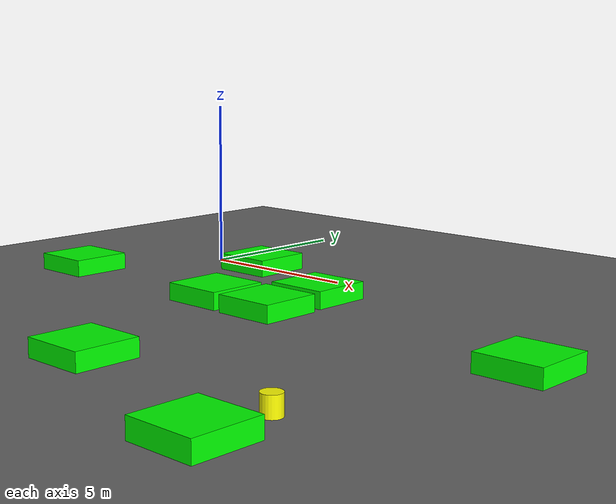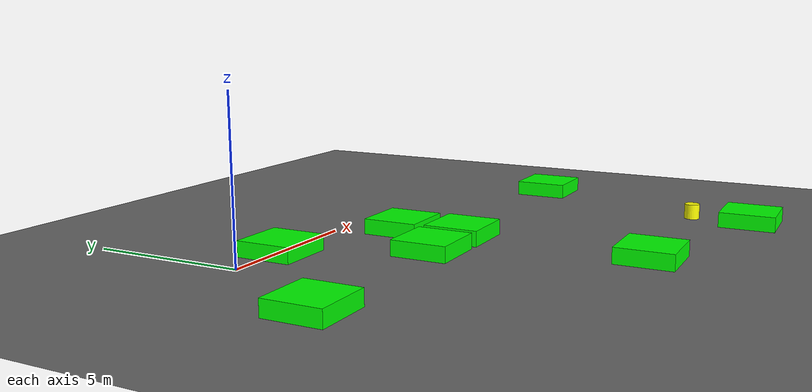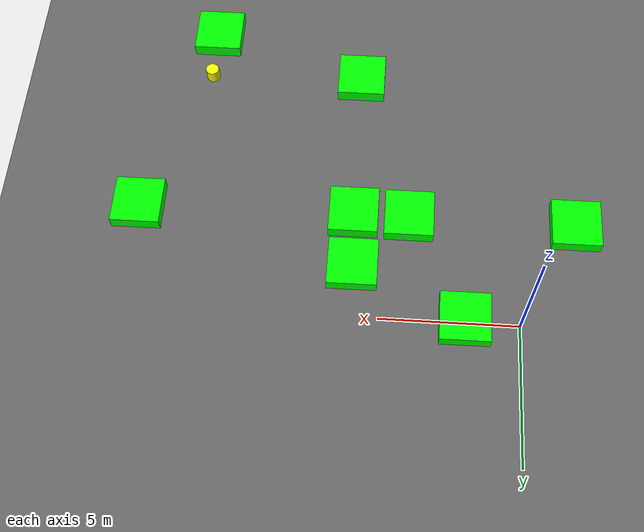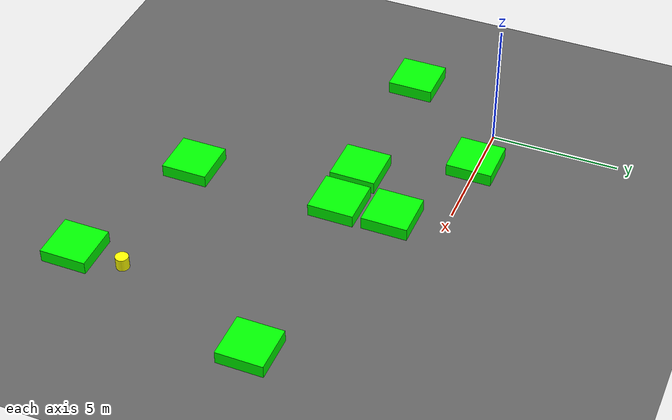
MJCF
<mujoco model="lvl4_standard_obs8_d3long_seed1032">
    <compiler angle="degree" coordinate="local" inertiafromgeom="true"/>
    <option integrator="RK4" timestep="0.01"/>

    <asset>
        <texture builtin="gradient" height="100" rgb1="0.6 0.8 1" rgb2="0 0 0" type="skybox" width="100"/>
        <texture name="floor_texture" type="2d" builtin="checker" width="100" height="100" rgb1="0 0 0" rgb2="0.8 0.8 0.8"/>
        <material name="MatPlane" reflectance="0.5" shininess="1" specular="1" texrepeat="10 10" texture="floor_texture"/>
    </asset>

    <!-- Excluding the contact between the agent and the goal, and the agent and the floor -->
    <contact>
        <exclude body1="agent" body2="goal"/>
        <exclude body1 = "agent" body2 = "floor"/>
    </contact>

    <extension>
        <plugin plugin = "mujoco.pid">
            <instance name = "pid1">
                <config key="kp" value="2"/>
                <config key="ki" value="0"/>
                <config key="kd" value="55"/>
            </instance>
        </plugin>
    </extension>

    <worldbody>
        <light cutoff="100" diffuse="1 1 1" dir="-0 0 -1.3" directional="true" exponent="1" pos="0 0 1.3" specular=".1 .1 .1"/>
        <body name="floor" pos="0 0 0">
            <geom name="floor_geom" type="plane" size="20 20 0.1" material="MatPlane"/>
        </body>

                <body name="goal" pos="0.0000 0.0000 0">
            <geom name="goal_geom" type="plane" size="0.5 0.5 1" pos="0 0 0" rgba="1 0 0 1"/>
        </body>

                <body name="agent" pos="12.0000 -10.0000 0.250">
            <joint name="j1" type="slide" axis ="1 0 0 "/>
            <joint name="j2" type="slide" axis ="0 1 0 "/>
            <geom name="agent_geom" type="cylinder" size="0.25 0.25 0.250" rgba="1 1 0 1"/>
        </body>

        <body name="obstacle1" pos="1.9498 -0.0970 0.250">  <geom name="obstacle1_geom" type="box" size="0.9000 0.9000 0.250" rgba="0 1 0 1"/></body>
        <body name="obstacle2" pos="5.9840 -1.9748 0.250">  <geom name="obstacle2_geom" type="box" size="0.9000 0.9000 0.250" rgba="0 1 0 1"/></body>
        <body name="obstacle3" pos="-2.0601 -3.9780 0.250">  <geom name="obstacle3_geom" type="box" size="0.9000 0.9000 0.250" rgba="0 1 0 1"/></body>
        <body name="obstacle4" pos="4.0230 -4.0355 0.250">  <geom name="obstacle4_geom" type="box" size="0.9000 0.9000 0.250" rgba="0 1 0 1"/></body>
        <body name="obstacle5" pos="6.0613 -4.0743 0.250">  <geom name="obstacle5_geom" type="box" size="0.9000 0.9000 0.250" rgba="0 1 0 1"/></body>
        <body name="obstacle6" pos="14.0261 -4.0132 0.250">  <geom name="obstacle6_geom" type="box" size="0.9000 0.9000 0.250" rgba="0 1 0 1"/></body>
        <body name="obstacle7" pos="6.0882 -10.0879 0.250">  <geom name="obstacle7_geom" type="box" size="0.9000 0.9000 0.250" rgba="0 1 0 1"/></body>
        <body name="obstacle8" pos="11.9415 -11.9597 0.250">  <geom name="obstacle8_geom" type="box" size="0.9000 0.9000 0.250" rgba="0 1 0 1"/></body>

    </worldbody>

    <sensor>
<!-- SENSORS -->

        <distance name="dist1" geom1="agent_geom" geom2="obstacle1_geom" cutoff="1.5"/>
        <distance name="dist2" geom1="agent_geom" geom2="obstacle2_geom" cutoff="1.5"/>
        <distance name="dist3" geom1="agent_geom" geom2="obstacle3_geom" cutoff="1.5"/>
        <distance name="dist4" geom1="agent_geom" geom2="obstacle4_geom" cutoff="1.5"/>
        <distance name="dist5" geom1="agent_geom" geom2="obstacle5_geom" cutoff="1.5"/>
        <distance name="dist6" geom1="agent_geom" geom2="obstacle6_geom" cutoff="1.5"/>
        <distance name="dist7" geom1="agent_geom" geom2="obstacle7_geom" cutoff="1.5"/>
        <distance name="dist8" geom1="agent_geom" geom2="obstacle8_geom" cutoff="1.5"/>
</sensor>

    <actuator>
        <plugin joint="j1" plugin="mujoco.pid" instance="pid1" />
        <plugin joint="j2" plugin="mujoco.pid" instance="pid1"/>
    </actuator>
</mujoco>
